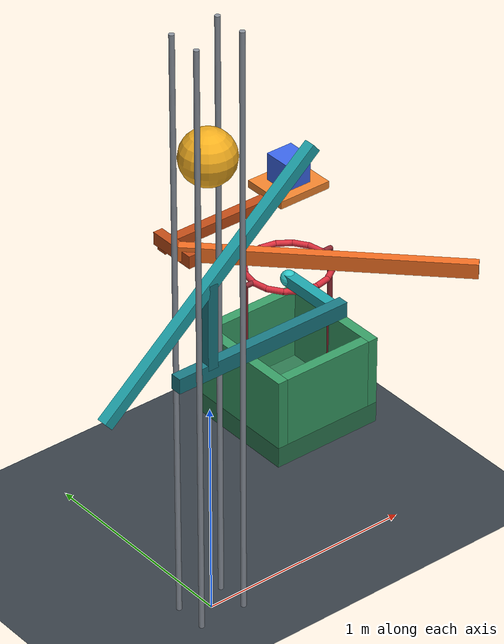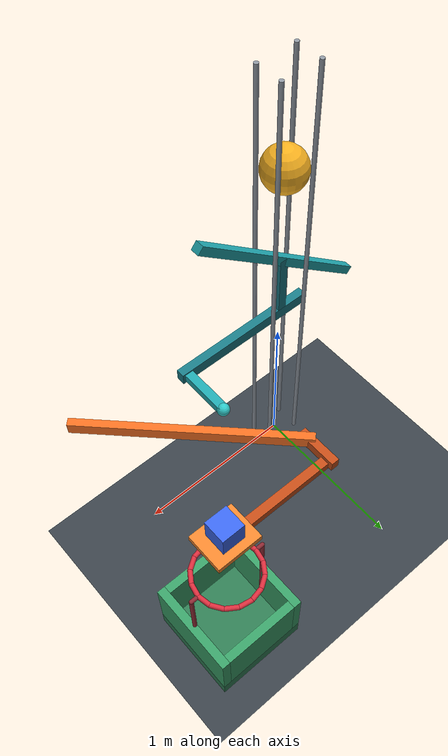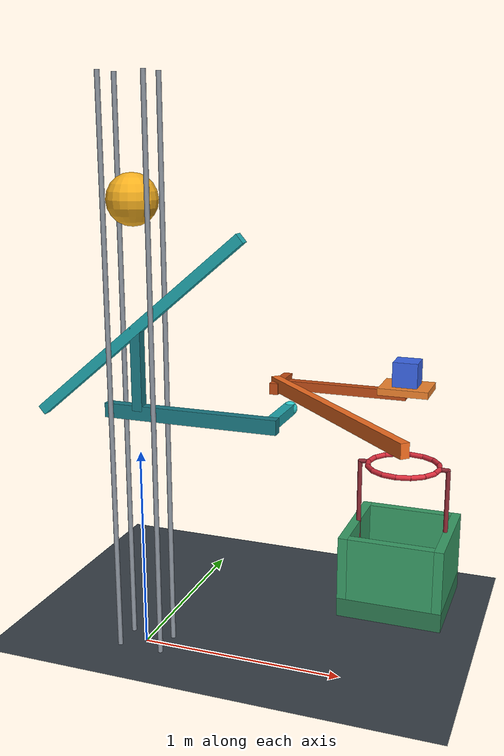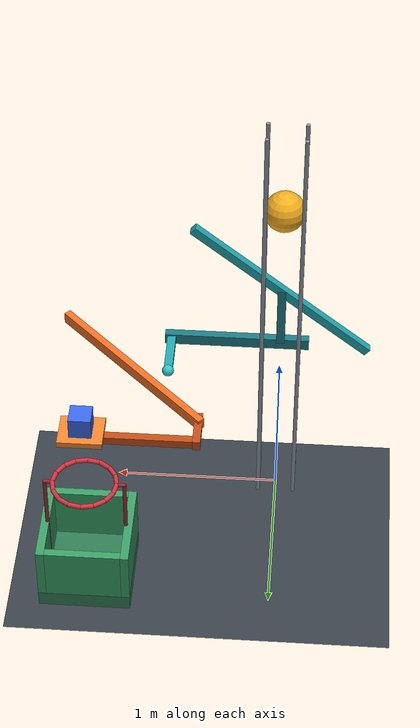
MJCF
<mujoco model="gravity_driven_slide_release">
  <compiler angle="degree" autolimits="true"/>
  <option timestep="0.002" gravity="0 0 -9.81" integrator="implicitfast" solver="Newton" iterations="100" tolerance="1e-10" cone="elliptic"/>
  <size njmax="2000" nconmax="400"/>

  <visual>
    <global azimuth="135" elevation="-20"/>
    <headlight ambient="0.35 0.35 0.35" diffuse="0.7 0.7 0.7" specular="0.2 0.2 0.2"/>
  </visual>

  <worldbody>
    <light name="overhead_light" pos="0.5 -1 4" dir="0 0 -1" diffuse="0.8 0.8 0.8"/>
    <camera name="overview" pos="3.5 -4.5 3.2" xyaxes="0.8 0.6 0 -0.25 0.33 0.91"/>
    <geom name="floor" type="plane" size="5 5 0.1" pos="0 0 0" friction="0.8 0.01 0.001" rgba="0.22 0.25 0.28 1"/>

    <!-- Four separated rods guide the ball vertically without intersecting the narrow ramp. -->
    <body name="ball_guide" pos="0 0 0">
      <geom name="ball_guide_front_left" type="cylinder" pos="-0.11 -0.075 1.37" size="0.012 1.37" friction="0.01 0.001 0.0001" solref="0.012 1" rgba="0.55 0.58 0.62 1"/>
      <geom name="ball_guide_front_right" type="cylinder" pos="0.11 -0.075 1.37" size="0.012 1.37" friction="0.01 0.001 0.0001" solref="0.012 1" rgba="0.55 0.58 0.62 1"/>
      <geom name="ball_guide_back_left" type="cylinder" pos="-0.11 0.075 1.37" size="0.012 1.37" friction="0.01 0.001 0.0001" solref="0.012 1" rgba="0.55 0.58 0.62 1"/>
      <geom name="ball_guide_back_right" type="cylinder" pos="0.11 0.075 1.37" size="0.012 1.37" friction="0.01 0.001 0.0001" solref="0.012 1" rgba="0.55 0.58 0.62 1"/>
    </body>

    <!-- The initial sphere-to-ramp clearance along the vertical drop is 0.400 m. -->
    <body name="ball" pos="0 0 2.189287">
      <freejoint name="ball_free"/>
      <geom name="ball_sphere" type="sphere" size="0.12" mass="2" friction="0.025 0.001 0.0001" solref="0.012 1" solimp="0.95 0.99 0.001" rgba="0.95 0.68 0.12 1"/>
    </body>

    <!-- A rising ramp converts the guided ball's downward force into positive-x travel. -->
    <body name="slider1" pos="0 0 1.6">
      <inertial pos="0.2 0.06 -0.25" mass="0.7" diaginertia="0.035 0.12 0.12"/>
      <joint name="slider1_slide" type="slide" axis="1 0 0" range="0 0.5" damping="3" frictionloss="0.08" armature="0.02" solreflimit="0.012 1"/>
      <geom name="slider1_ramp" type="box" pos="0 0 0" quat="0.939692621 0 -0.342020143 0" size="0.68 0.025 0.025" friction="0.025 0.001 0.0001" solref="0.012 1" rgba="0.12 0.65 0.68 1"/>
      <geom name="slider1_stem" type="box" pos="0 0 -0.19" size="0.025 0.025 0.20" friction="0.02 0.001 0.0001" rgba="0.10 0.48 0.52 1"/>
      <geom name="slider1_carriage" type="box" pos="0.26 0 -0.4" size="0.43 0.025 0.035" friction="0.02 0.001 0.0001" rgba="0.10 0.48 0.52 1"/>
      <geom name="slider1_pusher_arm" type="box" pos="0.65 0.15 -0.4" size="0.025 0.15 0.025" friction="0.02 0.001 0.0001" rgba="0.12 0.65 0.68 1"/>
      <geom name="slider1_pusher" type="sphere" pos="0.65 0.3 -0.4" size="0.035" friction="0.015 0.001 0.0001" solref="0.012 1" rgba="0.18 0.78 0.78 1"/>
    </body>

    <!-- The pusher crosses an approximately 0.129 m x-gap before contacting this diagonal cam. -->
    <!-- The diagonal cam converts further positive-x travel into positive-y support withdrawal. -->
    <body name="slider2" pos="0.86 0.3 1.2">
      <inertial pos="-0.03 0.25 -0.01" mass="0.45" diaginertia="0.045 0.045 0.075"/>
      <joint name="slider2_slide" type="slide" axis="0 1 0" range="0 0.38" damping="1" frictionloss="0.15" armature="0.01" solreflimit="0.012 1"/>
      <geom name="slider2_diagonal_cam" type="box" pos="0 0 0" euler="0 0 -45" size="0.62 0.022 0.035" friction="0.015 0.001 0.0001" solref="0.012 1" rgba="0.95 0.43 0.13 1"/>
      <geom name="slider2_left_arm" type="box" pos="-0.42 0.48 -0.015" size="0.023 0.12 0.03" friction="0.01 0.001 0.0001" rgba="0.76 0.30 0.09 1"/>
      <geom name="slider2_crossbar" type="box" pos="-0.10 0.55 -0.035" size="0.34 0.025 0.025" friction="0.01 0.001 0.0001" rgba="0.76 0.30 0.09 1"/>
      <geom name="slider2_support" type="box" pos="0.24 0.55 0" size="0.13 0.11 0.018" friction="0.008 0.001 0.0001" solref="0.012 1" rgba="0.95 0.52 0.18 1"/>
    </body>

    <body name="block" pos="1.1 0.85 1.284">
      <freejoint name="block_free"/>
      <geom name="block_cube" type="box" size="0.065 0.065 0.065" mass="0.22" friction="0.008 0.001 0.0001" solref="0.012 1" solimp="0.95 0.99 0.001" rgba="0.23 0.40 0.92 1"/>
    </body>

    <!-- A fixed, horizontal hoop assembled entirely from primitive capsules. -->
    <body name="hoop" pos="1.1 0.85 0.78">
      <geom name="hoop_ring_01" type="capsule" fromto="0.19 0 0 0.175537 0.072710 0" size="0.014" friction="0.3 0.005 0.0001" rgba="0.85 0.18 0.24 1"/>
      <geom name="hoop_ring_02" type="capsule" fromto="0.175537 0.072710 0 0.134350 0.134350 0" size="0.014" friction="0.3 0.005 0.0001" rgba="0.85 0.18 0.24 1"/>
      <geom name="hoop_ring_03" type="capsule" fromto="0.134350 0.134350 0 0.072710 0.175537 0" size="0.014" friction="0.3 0.005 0.0001" rgba="0.85 0.18 0.24 1"/>
      <geom name="hoop_ring_04" type="capsule" fromto="0.072710 0.175537 0 0 0.19 0" size="0.014" friction="0.3 0.005 0.0001" rgba="0.85 0.18 0.24 1"/>
      <geom name="hoop_ring_05" type="capsule" fromto="0 0.19 0 -0.072710 0.175537 0" size="0.014" friction="0.3 0.005 0.0001" rgba="0.85 0.18 0.24 1"/>
      <geom name="hoop_ring_06" type="capsule" fromto="-0.072710 0.175537 0 -0.134350 0.134350 0" size="0.014" friction="0.3 0.005 0.0001" rgba="0.85 0.18 0.24 1"/>
      <geom name="hoop_ring_07" type="capsule" fromto="-0.134350 0.134350 0 -0.175537 0.072710 0" size="0.014" friction="0.3 0.005 0.0001" rgba="0.85 0.18 0.24 1"/>
      <geom name="hoop_ring_08" type="capsule" fromto="-0.175537 0.072710 0 -0.19 0 0" size="0.014" friction="0.3 0.005 0.0001" rgba="0.85 0.18 0.24 1"/>
      <geom name="hoop_ring_09" type="capsule" fromto="-0.19 0 0 -0.175537 -0.072710 0" size="0.014" friction="0.3 0.005 0.0001" rgba="0.85 0.18 0.24 1"/>
      <geom name="hoop_ring_10" type="capsule" fromto="-0.175537 -0.072710 0 -0.134350 -0.134350 0" size="0.014" friction="0.3 0.005 0.0001" rgba="0.85 0.18 0.24 1"/>
      <geom name="hoop_ring_11" type="capsule" fromto="-0.134350 -0.134350 0 -0.072710 -0.175537 0" size="0.014" friction="0.3 0.005 0.0001" rgba="0.85 0.18 0.24 1"/>
      <geom name="hoop_ring_12" type="capsule" fromto="-0.072710 -0.175537 0 0 -0.19 0" size="0.014" friction="0.3 0.005 0.0001" rgba="0.85 0.18 0.24 1"/>
      <geom name="hoop_ring_13" type="capsule" fromto="0 -0.19 0 0.072710 -0.175537 0" size="0.014" friction="0.3 0.005 0.0001" rgba="0.85 0.18 0.24 1"/>
      <geom name="hoop_ring_14" type="capsule" fromto="0.072710 -0.175537 0 0.134350 -0.134350 0" size="0.014" friction="0.3 0.005 0.0001" rgba="0.85 0.18 0.24 1"/>
      <geom name="hoop_ring_15" type="capsule" fromto="0.134350 -0.134350 0 0.175537 -0.072710 0" size="0.014" friction="0.3 0.005 0.0001" rgba="0.85 0.18 0.24 1"/>
      <geom name="hoop_ring_16" type="capsule" fromto="0.175537 -0.072710 0 0.19 0 0" size="0.014" friction="0.3 0.005 0.0001" rgba="0.85 0.18 0.24 1"/>
      <geom name="hoop_left_post" type="cylinder" pos="-0.235 0 -0.39" size="0.012 0.39" rgba="0.55 0.16 0.20 1"/>
      <geom name="hoop_right_post" type="cylinder" pos="0.235 0 -0.39" size="0.012 0.39" rgba="0.55 0.16 0.20 1"/>
      <geom name="hoop_left_bracket" type="capsule" fromto="-0.235 0 0 -0.19 0 0" size="0.012" rgba="0.55 0.16 0.20 1"/>
      <geom name="hoop_right_bracket" type="capsule" fromto="0.19 0 0 0.235 0 0" size="0.012" rgba="0.55 0.16 0.20 1"/>
    </body>

    <body name="box" pos="1.1 0.85 0">
      <geom name="box_bottom" type="box" pos="0 0 0.05" size="0.275 0.275 0.05" friction="0.8 0.01 0.001" solref="0.015 1" solimp="0.95 0.99 0.001" rgba="0.18 0.48 0.32 1"/>
      <geom name="box_left_wall" type="box" pos="-0.25 0 0.27" size="0.025 0.275 0.17" friction="0.8 0.01 0.001" solref="0.015 1" rgba="0.22 0.62 0.40 1"/>
      <geom name="box_right_wall" type="box" pos="0.25 0 0.27" size="0.025 0.275 0.17" friction="0.8 0.01 0.001" solref="0.015 1" rgba="0.22 0.62 0.40 1"/>
      <geom name="box_front_wall" type="box" pos="0 -0.25 0.27" size="0.225 0.025 0.17" friction="0.8 0.01 0.001" solref="0.015 1" rgba="0.22 0.62 0.40 1"/>
      <geom name="box_back_wall" type="box" pos="0 0.25 0.27" size="0.225 0.025 0.17" friction="0.8 0.01 0.001" solref="0.015 1" rgba="0.22 0.62 0.40 1"/>
    </body>
  </worldbody>

  <keyframe>
    <key name="start" qpos="0 0 2.189287 1 0 0 0 0 0 1.1 0.85 1.284 1 0 0 0"/>
  </keyframe>
</mujoco>
